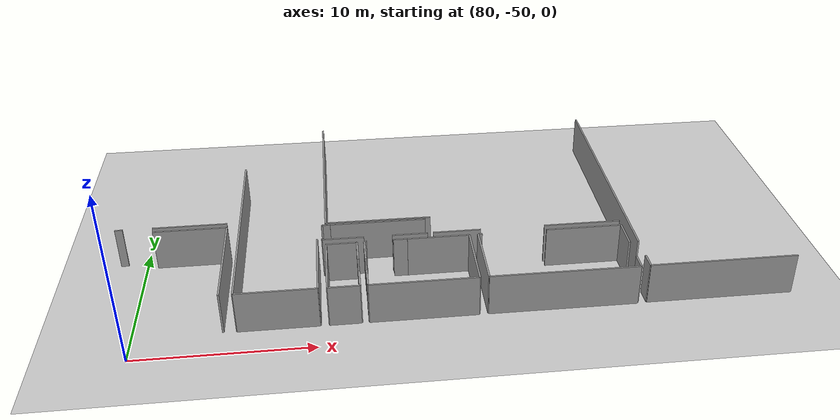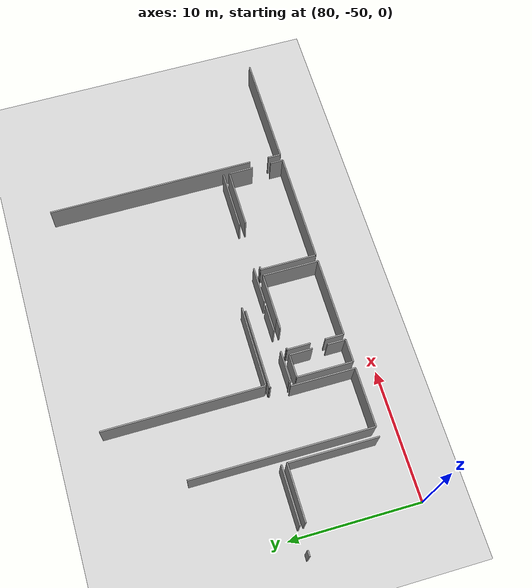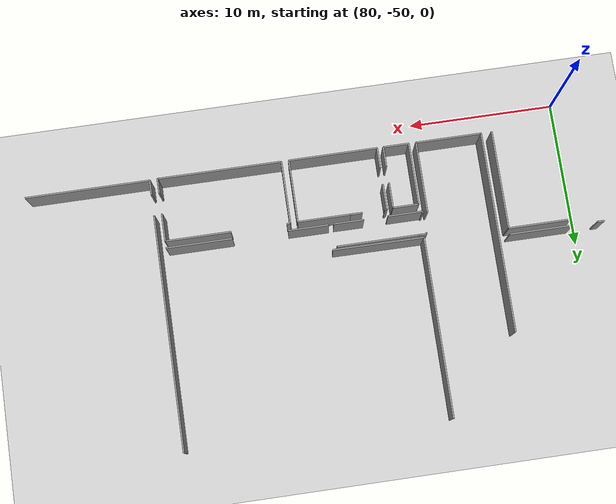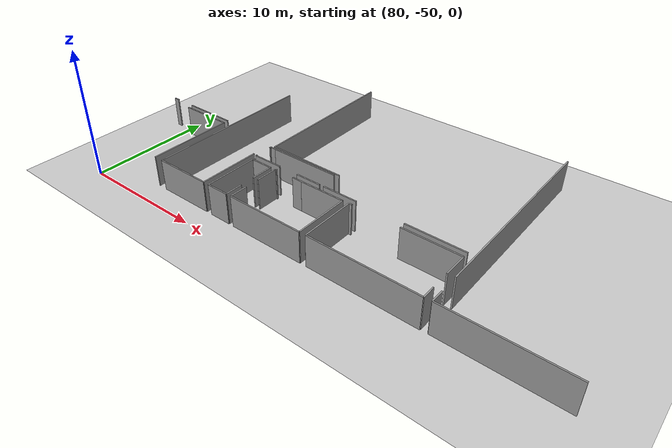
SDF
<sdf version="1.6">
 <world name="default">
  <model name="ground_plane">
   <static>1</static>
   <link name="link">
    <collision name="collision">
     <geometry><plane><normal>0 0 1</normal><size>100 100</size></plane></geometry>
     <surface><friction><ode><mu>100</mu><mu2>50</mu2></ode></friction></surface>
    </collision>
    <visual name="visual">
     <cast_shadows>0</cast_shadows>
     <geometry><plane><normal>0 0 1</normal><size>100 100</size></plane></geometry>
     <material>
      <script><uri>file://media/materials/scripts/gazebo.material</uri><name>Gazebo/Grey</name></script>
     </material>
    </visual>
   </link>
  </model>
  <model name="0510035518_A_40_1_101">
   <static>1</static>
   <link name="Wall_337">
    <collision name="Wall_337_Collision">
     <geometry><box><size>4.31425849476 0.1 2.5</size></box></geometry>
     <pose>2.15712924738 0 1.25 0 0 0</pose>
    </collision>
    <visual name="Wall_337_Visual">
     <pose>2.15712924738 0 1.25 0 0 0</pose>
     <geometry><box><size>4.31425849476 0.1 2.5</size></box></geometry>
     <material>
      <script><uri>file://media/materials/scripts/gazebo.material</uri><name>Gazebo/Grey</name></script>
      <ambient>1 1 1 1</ambient>
     </material>
    </visual>
    <pose>201.637599238 -109.564433153 0 0 0 3.14159265359</pose>
   </link>
   <link name="Wall_338">
    <collision name="Wall_338_Collision">
     <geometry><box><size>0.454239441092 0.1 2.5</size></box></geometry>
     <pose>0.227119720546 0 1.25 0 0 0</pose>
    </collision>
    <visual name="Wall_338_Visual">
     <pose>0.227119720546 0 1.25 0 0 0</pose>
     <geometry><box><size>0.454239441092 0.1 2.5</size></box></geometry>
     <material>
      <script><uri>file://media/materials/scripts/gazebo.material</uri><name>Gazebo/Grey</name></script>
      <ambient>1 1 1 1</ambient>
     </material>
    </visual>
    <pose>195.636456018 -109.564433153 0 0 0 3.14159265359</pose>
   </link>
   <link name="Wall_347">
    <collision name="Wall_347_Collision">
     <geometry><box><size>4.26243251826 0.1 2.5</size></box></geometry>
     <pose>2.13121625913 0 1.25 0 0 0</pose>
    </collision>
    <visual name="Wall_347_Visual">
     <pose>2.13121625913 0 1.25 0 0 0</pose>
     <geometry><box><size>4.26243251826 0.1 2.5</size></box></geometry>
     <material>
      <script><uri>file://media/materials/scripts/gazebo.material</uri><name>Gazebo/Grey</name></script>
      <ambient>1 1 1 1</ambient>
     </material>
    </visual>
    <pose>197.386090822 -109.985138139 0 0 0 0.0</pose>
   </link>
   <link name="Wall_348">
    <collision name="Wall_348_Collision">
     <geometry><box><size>6.79377580184 0.1 2.5</size></box></geometry>
     <pose>3.39688790092 0 1.25 0 0 0</pose>
    </collision>
    <visual name="Wall_348_Visual">
     <pose>3.39688790092 0 1.25 0 0 0</pose>
     <geometry><box><size>6.79377580184 0.1 2.5</size></box></geometry>
     <material>
      <script><uri>file://media/materials/scripts/gazebo.material</uri><name>Gazebo/Grey</name></script>
      <ambient>1 1 1 1</ambient>
     </material>
    </visual>
    <pose>201.648523341 -109.985138139 0 0 0 -1.57079632679</pose>
   </link>
   <link name="Wall_395">
    <collision name="Wall_395_Collision">
     <geometry><box><size>4.89831692601 0.1 2.5</size></box></geometry>
     <pose>2.449158463 0 1.25 0 0 0</pose>
    </collision>
    <visual name="Wall_395_Visual">
     <pose>2.449158463 0 1.25 0 0 0</pose>
     <geometry><box><size>4.89831692601 0.1 2.5</size></box></geometry>
     <material>
      <script><uri>file://media/materials/scripts/gazebo.material</uri><name>Gazebo/Grey</name></script>
      <ambient>1 1 1 1</ambient>
     </material>
    </visual>
    <pose>206.879644332 -111.862813592 0 0 0 -1.57079632679</pose>
   </link>
   <link name="Wall_396">
    <collision name="Wall_396_Collision">
     <geometry><box><size>4.49107653223 0.1 2.5</size></box></geometry>
     <pose>2.24553826612 0 1.25 0 0 0</pose>
    </collision>
    <visual name="Wall_396_Visual">
     <pose>2.24553826612 0 1.25 0 0 0</pose>
     <geometry><box><size>4.49107653223 0.1 2.5</size></box></geometry>
     <material>
      <script><uri>file://media/materials/scripts/gazebo.material</uri><name>Gazebo/Grey</name></script>
      <ambient>1 1 1 1</ambient>
     </material>
    </visual>
    <pose>206.879644332 -116.761130518 0 0 0 3.14159265359</pose>
   </link>
   <link name="Wall_397">
    <collision name="Wall_397_Collision">
     <geometry><box><size>13.7633534455 0.1 2.5</size></box></geometry>
     <pose>6.88167672277 0 1.25 0 0 0</pose>
    </collision>
    <visual name="Wall_397_Visual">
     <pose>6.88167672277 0 1.25 0 0 0</pose>
     <geometry><box><size>13.7633534455 0.1 2.5</size></box></geometry>
     <material>
      <script><uri>file://media/materials/scripts/gazebo.material</uri><name>Gazebo/Grey</name></script>
      <ambient>1 1 1 1</ambient>
     </material>
    </visual>
    <pose>202.388567799 -116.761130518 0 0 0 1.57079632679</pose>
   </link>
   <link name="Wall_409">
    <collision name="Wall_409_Collision">
     <geometry><box><size>5.60609717371 0.1 2.5</size></box></geometry>
     <pose>2.80304858685 0 1.25 0 0 0</pose>
    </collision>
    <visual name="Wall_409_Visual">
     <pose>2.80304858685 0 1.25 0 0 0</pose>
     <geometry><box><size>5.60609717371 0.1 2.5</size></box></geometry>
     <material>
      <script><uri>file://media/materials/scripts/gazebo.material</uri><name>Gazebo/Grey</name></script>
      <ambient>1 1 1 1</ambient>
     </material>
    </visual>
    <pose>207.65677993 -110.397205462 0 0 0 0.0</pose>
   </link>
   <link name="Wall_410">
    <collision name="Wall_410_Collision">
     <geometry><box><size>2.06389329946 0.1 2.5</size></box></geometry>
     <pose>1.03194664973 0 1.25 0 0 0</pose>
    </collision>
    <visual name="Wall_410_Visual">
     <pose>1.03194664973 0 1.25 0 0 0</pose>
     <geometry><box><size>2.06389329946 0.1 2.5</size></box></geometry>
     <material>
      <script><uri>file://media/materials/scripts/gazebo.material</uri><name>Gazebo/Grey</name></script>
      <ambient>1 1 1 1</ambient>
     </material>
    </visual>
    <pose>213.262877104 -111.966719594 0 0 0 3.14159265359</pose>
   </link>
   <link name="Wall_411">
    <collision name="Wall_411_Collision">
     <geometry><box><size>2.38094633217 0.1 2.5</size></box></geometry>
     <pose>1.19047316608 0 1.25 0 0 0</pose>
    </collision>
    <visual name="Wall_411_Visual">
     <pose>1.19047316608 0 1.25 0 0 0</pose>
     <geometry><box><size>2.38094633217 0.1 2.5</size></box></geometry>
     <material>
      <script><uri>file://media/materials/scripts/gazebo.material</uri><name>Gazebo/Grey</name></script>
      <ambient>1 1 1 1</ambient>
     </material>
    </visual>
    <pose>209.560876469 -111.966719594 0 0 0 3.14159265359</pose>
   </link>
   <link name="Wall_412">
    <collision name="Wall_412_Collision">
     <geometry><box><size>0.112289615751 0.1 2.5</size></box></geometry>
     <pose>0.0561448078755 0 1.25 0 0 0</pose>
    </collision>
    <visual name="Wall_412_Visual">
     <pose>0.0561448078755 0 1.25 0 0 0</pose>
     <geometry><box><size>0.112289615751 0.1 2.5</size></box></geometry>
     <material>
      <script><uri>file://media/materials/scripts/gazebo.material</uri><name>Gazebo/Grey</name></script>
      <ambient>1 1 1 1</ambient>
     </material>
    </visual>
    <pose>207.179930137 -111.966719594 0 0 0 1.57079632679</pose>
   </link>
   <link name="Wall_413">
    <collision name="Wall_413_Collision">
     <geometry><box><size>0.103906001905 0.1 2.5</size></box></geometry>
     <pose>0.0519530009527 0 1.25 0 0 0</pose>
    </collision>
    <visual name="Wall_413_Visual">
     <pose>0.0519530009527 0 1.25 0 0 0</pose>
     <geometry><box><size>0.103906001905 0.1 2.5</size></box></geometry>
     <material>
      <script><uri>file://media/materials/scripts/gazebo.material</uri><name>Gazebo/Grey</name></script>
      <ambient>1 1 1 1</ambient>
     </material>
    </visual>
    <pose>207.179930137 -110.493998095 0 0 0 1.57079632679</pose>
   </link>
   <link name="Wall_414">
    <collision name="Wall_414_Collision">
     <geometry><box><size>0.476902847198 0.1 2.5</size></box></geometry>
     <pose>0.238451423599 0 1.25 0 0 0</pose>
    </collision>
    <visual name="Wall_414_Visual">
     <pose>0.238451423599 0 1.25 0 0 0</pose>
     <geometry><box><size>0.476902847198 0.1 2.5</size></box></geometry>
     <material>
      <script><uri>file://media/materials/scripts/gazebo.material</uri><name>Gazebo/Grey</name></script>
      <ambient>1 1 1 1</ambient>
     </material>
    </visual>
    <pose>207.179930137 -110.390092093 0 0 0 -0.0149163150429</pose>
   </link>
   <link name="Wall_415">
    <collision name="Wall_415_Collision">
     <geometry><box><size>3.60063512226 0.1 2.5</size></box></geometry>
     <pose>1.80031756113 0 1.25 0 0 0</pose>
    </collision>
    <visual name="Wall_415_Visual">
     <pose>1.80031756113 0 1.25 0 0 0</pose>
     <geometry><box><size>3.60063512226 0.1 2.5</size></box></geometry>
     <material>
      <script><uri>file://media/materials/scripts/gazebo.material</uri><name>Gazebo/Grey</name></script>
      <ambient>1 1 1 1</ambient>
     </material>
    </visual>
    <pose>212.033280406 -112.452461099 0 0 0 0.0</pose>
   </link>
   <link name="Wall_416">
    <collision name="Wall_416_Collision">
     <geometry><box><size>4.31044776119 0.1 2.5</size></box></geometry>
     <pose>2.1552238806 0 1.25 0 0 0</pose>
    </collision>
    <visual name="Wall_416_Visual">
     <pose>2.1552238806 0 1.25 0 0 0</pose>
     <geometry><box><size>4.31044776119 0.1 2.5</size></box></geometry>
     <material>
      <script><uri>file://media/materials/scripts/gazebo.material</uri><name>Gazebo/Grey</name></script>
      <ambient>1 1 1 1</ambient>
     </material>
    </visual>
    <pose>215.633915529 -112.452461099 0 0 0 -1.57079632679</pose>
   </link>
   <link name="Wall_417">
    <collision name="Wall_417_Collision">
     <geometry><box><size>6.07227691331 0.1 2.5</size></box></geometry>
     <pose>3.03613845665 0 1.25 0 0 0</pose>
    </collision>
    <visual name="Wall_417_Visual">
     <pose>3.03613845665 0 1.25 0 0 0</pose>
     <geometry><box><size>6.07227691331 0.1 2.5</size></box></geometry>
     <material>
      <script><uri>file://media/materials/scripts/gazebo.material</uri><name>Gazebo/Grey</name></script>
      <ambient>1 1 1 1</ambient>
     </material>
    </visual>
    <pose>215.633915529 -116.76290886 0 0 0 3.14159265359</pose>
   </link>
   <link name="Wall_418">
    <collision name="Wall_418_Collision">
     <geometry><box><size>1.4155604954 0.1 2.5</size></box></geometry>
     <pose>0.707780247698 0 1.25 0 0 0</pose>
    </collision>
    <visual name="Wall_418_Visual">
     <pose>0.707780247698 0 1.25 0 0 0</pose>
     <geometry><box><size>1.4155604954 0.1 2.5</size></box></geometry>
     <material>
      <script><uri>file://media/materials/scripts/gazebo.material</uri><name>Gazebo/Grey</name></script>
      <ambient>1 1 1 1</ambient>
     </material>
    </visual>
    <pose>209.561638615 -116.76290886 0 0 0 1.57079632679</pose>
   </link>
   <link name="Wall_419">
    <collision name="Wall_419_Collision">
     <geometry><box><size>1.77630993966 0.1 2.5</size></box></geometry>
     <pose>0.888154969832 0 1.25 0 0 0</pose>
    </collision>
    <visual name="Wall_419_Visual">
     <pose>0.888154969832 0 1.25 0 0 0</pose>
     <geometry><box><size>1.77630993966 0.1 2.5</size></box></geometry>
     <material>
      <script><uri>file://media/materials/scripts/gazebo.material</uri><name>Gazebo/Grey</name></script>
      <ambient>1 1 1 1</ambient>
     </material>
    </visual>
    <pose>209.561638615 -114.219371229 0 0 0 1.57079632679</pose>
   </link>
   <link name="Wall_420">
    <collision name="Wall_420_Collision">
     <geometry><box><size>0.131851381391 0.1 2.5</size></box></geometry>
     <pose>0.0659256906955 0 1.25 0 0 0</pose>
    </collision>
    <visual name="Wall_420_Visual">
     <pose>0.0659256906955 0 1.25 0 0 0</pose>
     <geometry><box><size>0.131851381391 0.1 2.5</size></box></geometry>
     <material>
      <script><uri>file://media/materials/scripts/gazebo.material</uri><name>Gazebo/Grey</name></script>
      <ambient>1 1 1 1</ambient>
     </material>
    </visual>
    <pose>209.561638615 -112.443061289 0 0 0 0.0</pose>
   </link>
   <link name="Wall_421">
    <collision name="Wall_421_Collision">
     <geometry><box><size>0.80691407186 0.1 2.5</size></box></geometry>
     <pose>0.40345703593 0 1.25 0 0 0</pose>
    </collision>
    <visual name="Wall_421_Visual">
     <pose>0.40345703593 0 1.25 0 0 0</pose>
     <geometry><box><size>0.80691407186 0.1 2.5</size></box></geometry>
     <material>
      <script><uri>file://media/materials/scripts/gazebo.material</uri><name>Gazebo/Grey</name></script>
      <ambient>1 1 1 1</ambient>
     </material>
    </visual>
    <pose>211.226421086 -112.443061289 0 0 0 -0.0116493470597</pose>
   </link>
   <link name="Wall_422">
    <collision name="Wall_422_Collision">
     <geometry><box><size>4.27259447444 0.1 2.5</size></box></geometry>
     <pose>2.13629723722 0 1.25 0 0 0</pose>
    </collision>
    <visual name="Wall_422_Visual">
     <pose>2.13629723722 0 1.25 0 0 0</pose>
     <geometry><box><size>4.27259447444 0.1 2.5</size></box></geometry>
     <material>
      <script><uri>file://media/materials/scripts/gazebo.material</uri><name>Gazebo/Grey</name></script>
      <ambient>1 1 1 1</ambient>
     </material>
    </visual>
    <pose>207.380374722 -116.766465545 0 0 0 1.57079632679</pose>
   </link>
   <link name="Wall_423">
    <collision name="Wall_423_Collision">
     <geometry><box><size>1.75776436964 0.1 2.5</size></box></geometry>
     <pose>0.878882184821 0 1.25 0 0 0</pose>
    </collision>
    <visual name="Wall_423_Visual">
     <pose>0.878882184821 0 1.25 0 0 0</pose>
     <geometry><box><size>1.75776436964 0.1 2.5</size></box></geometry>
     <material>
      <script><uri>file://media/materials/scripts/gazebo.material</uri><name>Gazebo/Grey</name></script>
      <ambient>1 1 1 1</ambient>
     </material>
    </visual>
    <pose>207.380374722 -112.49387107 0 0 0 0.0</pose>
   </link>
   <link name="Wall_424">
    <collision name="Wall_424_Collision">
     <geometry><box><size>1.75192124484 0.1 2.5</size></box></geometry>
     <pose>0.87596062242 0 1.25 0 0 0</pose>
    </collision>
    <visual name="Wall_424_Visual">
     <pose>0.87596062242 0 1.25 0 0 0</pose>
     <geometry><box><size>1.75192124484 0.1 2.5</size></box></geometry>
     <material>
      <script><uri>file://media/materials/scripts/gazebo.material</uri><name>Gazebo/Grey</name></script>
      <ambient>1 1 1 1</ambient>
     </material>
    </visual>
    <pose>209.138139092 -112.49387107 0 0 0 -1.57079632679</pose>
   </link>
   <link name="Wall_425">
    <collision name="Wall_425_Collision">
     <geometry><box><size>1.38659892029 0.1 2.5</size></box></geometry>
     <pose>0.693299460146 0 1.25 0 0 0</pose>
    </collision>
    <visual name="Wall_425_Visual">
     <pose>0.693299460146 0 1.25 0 0 0</pose>
     <geometry><box><size>1.38659892029 0.1 2.5</size></box></geometry>
     <material>
      <script><uri>file://media/materials/scripts/gazebo.material</uri><name>Gazebo/Grey</name></script>
      <ambient>1 1 1 1</ambient>
     </material>
    </visual>
    <pose>209.138139092 -115.380628771 0 0 0 -1.57079632679</pose>
   </link>
   <link name="Wall_426">
    <collision name="Wall_426_Collision">
     <geometry><box><size>1.75776453487 0.1 2.5</size></box></geometry>
     <pose>0.878882267435 0 1.25 0 0 0</pose>
    </collision>
    <visual name="Wall_426_Visual">
     <pose>0.878882267435 0 1.25 0 0 0</pose>
     <geometry><box><size>1.75776453487 0.1 2.5</size></box></geometry>
     <material>
      <script><uri>file://media/materials/scripts/gazebo.material</uri><name>Gazebo/Grey</name></script>
      <ambient>1 1 1 1</ambient>
     </material>
    </visual>
    <pose>209.138139092 -116.767227691 0 0 0 3.14115906495</pose>
   </link>
   <link name="Wall_427">
    <collision name="Wall_427_Collision">
     <geometry><box><size>12.2161956177 0.1 2.5</size></box></geometry>
     <pose>6.10809780883 0 1.25 0 0 0</pose>
    </collision>
    <visual name="Wall_427_Visual">
     <pose>6.10809780883 0 1.25 0 0 0</pose>
     <geometry><box><size>12.2161956177 0.1 2.5</size></box></geometry>
     <material>
      <script><uri>file://media/materials/scripts/gazebo.material</uri><name>Gazebo/Grey</name></script>
      <ambient>1 1 1 1</ambient>
     </material>
    </visual>
    <pose>207.384439505 -110.181263893 0 0 0 1.57079632679</pose>
   </link>
   <link name="Wall_441">
    <collision name="Wall_441_Collision">
     <geometry><box><size>4.51190854239 0.1 2.5</size></box></geometry>
     <pose>2.2559542712 0 1.25 0 0 0</pose>
    </collision>
    <visual name="Wall_441_Visual">
     <pose>2.2559542712 0 1.25 0 0 0</pose>
     <geometry><box><size>4.51190854239 0.1 2.5</size></box></geometry>
     <material>
      <script><uri>file://media/materials/scripts/gazebo.material</uri><name>Gazebo/Grey</name></script>
      <ambient>1 1 1 1</ambient>
     </material>
    </visual>
    <pose>224.646554462 -111.950460464 0 0 0 3.14159265359</pose>
   </link>
   <link name="Wall_442">
    <collision name="Wall_442_Collision">
     <geometry><box><size>2.78234360114 0.1 2.5</size></box></geometry>
     <pose>1.39117180057 0 1.25 0 0 0</pose>
    </collision>
    <visual name="Wall_442_Visual">
     <pose>1.39117180057 0 1.25 0 0 0</pose>
     <geometry><box><size>2.78234360114 0.1 2.5</size></box></geometry>
     <material>
      <script><uri>file://media/materials/scripts/gazebo.material</uri><name>Gazebo/Grey</name></script>
      <ambient>1 1 1 1</ambient>
     </material>
    </visual>
    <pose>216.370149254 -111.950460464 0 0 0 3.14159265359</pose>
   </link>
   <link name="Wall_443">
    <collision name="Wall_443_Collision">
     <geometry><box><size>6.20345678841 0.1 2.5</size></box></geometry>
     <pose>3.1017283942 0 1.25 0 0 0</pose>
    </collision>
    <visual name="Wall_443_Visual">
     <pose>3.1017283942 0 1.25 0 0 0</pose>
     <geometry><box><size>6.20345678841 0.1 2.5</size></box></geometry>
     <material>
      <script><uri>file://media/materials/scripts/gazebo.material</uri><name>Gazebo/Grey</name></script>
      <ambient>1 1 1 1</ambient>
     </material>
    </visual>
    <pose>213.587805653 -110.214798349 0 0 0 3.1361868581</pose>
   </link>
   <link name="Wall_444">
    <collision name="Wall_444_Collision">
     <geometry><box><size>4.32924738012 0.1 2.5</size></box></geometry>
     <pose>2.16462369006 0 1.25 0 0 0</pose>
    </collision>
    <visual name="Wall_444_Visual">
     <pose>2.16462369006 0 1.25 0 0 0</pose>
     <geometry><box><size>4.32924738012 0.1 2.5</size></box></geometry>
     <material>
      <script><uri>file://media/materials/scripts/gazebo.material</uri><name>Gazebo/Grey</name></script>
      <ambient>1 1 1 1</ambient>
     </material>
    </visual>
    <pose>216.144045729 -116.754271197 0 0 0 1.57079632679</pose>
   </link>
   <link name="Wall_445">
    <collision name="Wall_445_Collision">
     <geometry><box><size>0.248713877421 0.1 2.5</size></box></geometry>
     <pose>0.124356938711 0 1.25 0 0 0</pose>
    </collision>
    <visual name="Wall_445_Visual">
     <pose>0.124356938711 0 1.25 0 0 0</pose>
     <geometry><box><size>0.248713877421 0.1 2.5</size></box></geometry>
     <material>
      <script><uri>file://media/materials/scripts/gazebo.material</uri><name>Gazebo/Grey</name></script>
      <ambient>1 1 1 1</ambient>
     </material>
    </visual>
    <pose>216.144045729 -112.425023817 0 0 0 0.0</pose>
   </link>
   <link name="Wall_446">
    <collision name="Wall_446_Collision">
     <geometry><box><size>4.45601778342 0.1 2.5</size></box></geometry>
     <pose>2.22800889171 0 1.25 0 0 0</pose>
    </collision>
    <visual name="Wall_446_Visual">
     <pose>2.22800889171 0 1.25 0 0 0</pose>
     <geometry><box><size>4.45601778342 0.1 2.5</size></box></geometry>
     <material>
      <script><uri>file://media/materials/scripts/gazebo.material</uri><name>Gazebo/Grey</name></script>
      <ambient>1 1 1 1</ambient>
     </material>
    </visual>
    <pose>220.170212766 -112.425023817 0 0 0 0.0</pose>
   </link>
   <link name="Wall_447">
    <collision name="Wall_447_Collision">
     <geometry><box><size>1.89317243569 0.1 2.5</size></box></geometry>
     <pose>0.946586217847 0 1.25 0 0 0</pose>
    </collision>
    <visual name="Wall_447_Visual">
     <pose>0.946586217847 0 1.25 0 0 0</pose>
     <geometry><box><size>1.89317243569 0.1 2.5</size></box></geometry>
     <material>
      <script><uri>file://media/materials/scripts/gazebo.material</uri><name>Gazebo/Grey</name></script>
      <ambient>1 1 1 1</ambient>
     </material>
    </visual>
    <pose>224.626230549 -112.425023817 0 0 0 -1.57079632679</pose>
   </link>
   <link name="Wall_448">
    <collision name="Wall_448_Collision">
     <geometry><box><size>1.00552556367 0.1 2.5</size></box></geometry>
     <pose>0.502762781836 0 1.25 0 0 0</pose>
    </collision>
    <visual name="Wall_448_Visual">
     <pose>0.502762781836 0 1.25 0 0 0</pose>
     <geometry><box><size>1.00552556367 0.1 2.5</size></box></geometry>
     <material>
      <script><uri>file://media/materials/scripts/gazebo.material</uri><name>Gazebo/Grey</name></script>
      <ambient>1 1 1 1</ambient>
     </material>
    </visual>
    <pose>224.626230549 -115.770085742 0 0 0 -1.57079632679</pose>
   </link>
   <link name="Wall_449">
    <collision name="Wall_449_Collision">
     <geometry><box><size>8.48221166505 0.1 2.5</size></box></geometry>
     <pose>4.24110583252 0 1.25 0 0 0</pose>
    </collision>
    <visual name="Wall_449_Visual">
     <pose>4.24110583252 0 1.25 0 0 0</pose>
     <geometry><box><size>8.48221166505 0.1 2.5</size></box></geometry>
     <material>
      <script><uri>file://media/materials/scripts/gazebo.material</uri><name>Gazebo/Grey</name></script>
      <ambient>1 1 1 1</ambient>
     </material>
    </visual>
    <pose>224.626230549 -116.775611305 0 0 0 3.13907678493</pose>
   </link>
   <link name="Wall_452">
    <collision name="Wall_452_Collision">
     <geometry><box><size>8.48523340743 0.1 2.5</size></box></geometry>
     <pose>4.24261670372 0 1.25 0 0 0</pose>
    </collision>
    <visual name="Wall_452_Visual">
     <pose>4.24261670372 0 1.25 0 0 0</pose>
     <geometry><box><size>8.48523340743 0.1 2.5</size></box></geometry>
     <material>
      <script><uri>file://media/materials/scripts/gazebo.material</uri><name>Gazebo/Grey</name></script>
      <ambient>1 1 1 1</ambient>
     </material>
    </visual>
    <pose>233.639885678 -116.735725627 0 0 0 3.14159265359</pose>
   </link>
   <link name="Wall_453">
    <collision name="Wall_453_Collision">
     <geometry><box><size>0.998412194347 0.1 2.5</size></box></geometry>
     <pose>0.499206097174 0 1.25 0 0 0</pose>
    </collision>
    <visual name="Wall_453_Visual">
     <pose>0.499206097174 0 1.25 0 0 0</pose>
     <geometry><box><size>0.998412194347 0.1 2.5</size></box></geometry>
     <material>
      <script><uri>file://media/materials/scripts/gazebo.material</uri><name>Gazebo/Grey</name></script>
      <ambient>1 1 1 1</ambient>
     </material>
    </visual>
    <pose>225.154652271 -116.735725627 0 0 0 1.57079632679</pose>
   </link>
   <link name="Wall_454">
    <collision name="Wall_454_Collision">
     <geometry><box><size>15.9789141429 0.1 2.5</size></box></geometry>
     <pose>7.98945707144 0 1.25 0 0 0</pose>
    </collision>
    <visual name="Wall_454_Visual">
     <pose>7.98945707144 0 1.25 0 0 0</pose>
     <geometry><box><size>15.9789141429 0.1 2.5</size></box></geometry>
     <material>
      <script><uri>file://media/materials/scripts/gazebo.material</uri><name>Gazebo/Grey</name></script>
      <ambient>1 1 1 1</ambient>
     </material>
    </visual>
    <pose>225.154652271 -114.26789457 0 0 0 1.5706373367</pose>
   </link>
   <pose>-116.8 68.630612893 0 0 0 0</pose>
  </model>
 </world>
</sdf>
